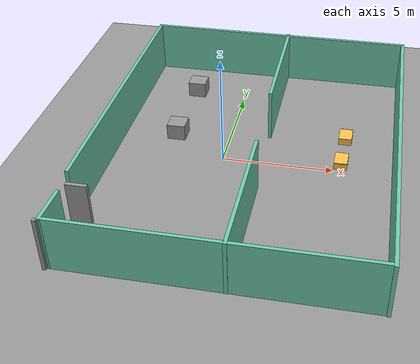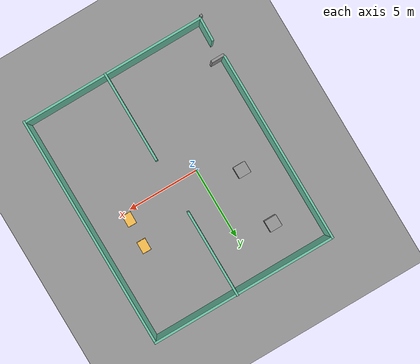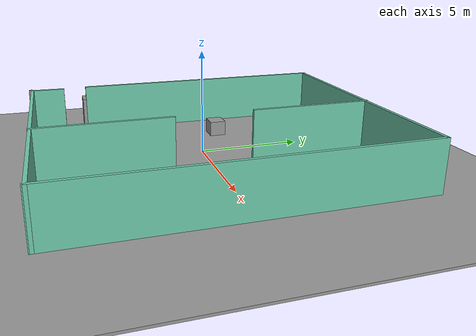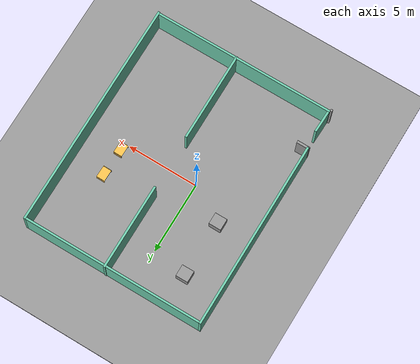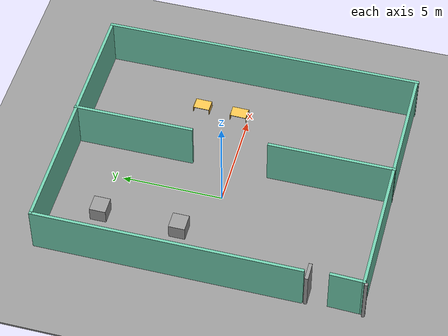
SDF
<sdf version="1.6">
 <world name="default">
  <model name="ground_plane">
   <static>1</static>
   <link name="link">
    <collision name="collision">
     <geometry><plane><normal>0 0 1</normal><size>100 100</size></plane></geometry>
     <surface><friction><ode><mu>100</mu><mu2>50</mu2></ode></friction></surface>
    </collision>
    <visual name="visual">
     <cast_shadows>0</cast_shadows>
     <geometry><plane><normal>0 0 1</normal><size>100 100</size></plane></geometry>
     <material>
      <script><uri>file://media/materials/scripts/gazebo.material</uri><name>Gazebo/Grey</name></script>
     </material>
    </visual>
   </link>
  </model>
  <model name="mybuild_0">
   <link name="Door_0">
    <pose>-5.95118 -5.22843 0 0 -0 0</pose>
    <visual name="Door_0_Visual">
     <pose>0 0 1 0 -0 0</pose>
     <geometry><box><size>0.9 0.17 2</size></box></geometry>
     <material>
      <script><uri>file://media/materials/scripts/gazebo.material</uri><name>Gazebo/Grey</name></script>
      <ambient>0.3 0.3 0.3 1</ambient>
      <diffuse>0.7 0.7 0.7 1</diffuse>
      <specular>0.01 0.01 0.01 1</specular>
      <emissive>0 0 0 1</emissive>
     </material>
    </visual>
    <collision name="Door_0_Collision">
     <pose>0 0 1 0 -0 0</pose>
     <geometry><box><size>0.9 0.17 2</size></box></geometry>
     <surface>
      <friction>
       <ode><mu>1</mu><mu2>1</mu2><fdir1>0 0 0</fdir1><slip1>0</slip1><slip2>0</slip2></ode>
       <torsional>
        <coefficient>1</coefficient>
        <patch_radius>0</patch_radius>
        <surface_radius>0</surface_radius>
        <use_patch_radius>1</use_patch_radius>
        <ode><slip>0</slip></ode>
       </torsional>
      </friction>
      <bounce><restitution_coefficient>0</restitution_coefficient><threshold>1e+06</threshold></bounce>
      <contact>
       <collide_without_contact>0</collide_without_contact>
       <collide_without_contact_bitmask>1</collide_without_contact_bitmask>
       <collide_bitmask>1</collide_bitmask>
       <ode>
        <soft_cfm>0</soft_cfm>
        <soft_erp>0.2</soft_erp>
        <kp>1e+13</kp>
        <kd>1</kd>
        <max_vel>0.01</max_vel>
        <min_depth>0</min_depth>
       </ode>
       <bullet>
        <split_impulse>1</split_impulse>
        <split_impulse_penetration_threshold>-0.01</split_impulse_penetration_threshold>
        <soft_cfm>0</soft_cfm>
        <soft_erp>0.2</soft_erp>
        <kp>1e+13</kp>
        <kd>1</kd>
       </bullet>
      </contact>
     </surface>
    </collision>
   </link>
   <link name="Wall_10">
    <pose>-6.36085 -7.96009 0 0 -0 0</pose>
    <visual name="Wall_10_Visual">
     <pose>0 0 1.25 0 -0 0</pose>
     <geometry><box><size>0.15 0.15 2.5</size></box></geometry>
     <material>
      <script><uri>file://media/materials/scripts/gazebo.material</uri><name>Gazebo/Grey</name></script>
      <ambient>1 1 1 1</ambient>
      <diffuse>0.7 0.7 0.7 1</diffuse>
      <specular>0.01 0.01 0.01 1</specular>
      <emissive>0 0 0 1</emissive>
     </material>
    </visual>
    <collision name="Wall_10_Collision">
     <pose>0 0 1.25 0 -0 0</pose>
     <geometry><box><size>0.15 0.15 2.5</size></box></geometry>
     <surface>
      <friction>
       <ode><mu>1</mu><mu2>1</mu2><fdir1>0 0 0</fdir1><slip1>0</slip1><slip2>0</slip2></ode>
       <torsional>
        <coefficient>1</coefficient>
        <patch_radius>0</patch_radius>
        <surface_radius>0</surface_radius>
        <use_patch_radius>1</use_patch_radius>
        <ode><slip>0</slip></ode>
       </torsional>
      </friction>
      <bounce><restitution_coefficient>0</restitution_coefficient><threshold>1e+06</threshold></bounce>
      <contact>
       <collide_without_contact>0</collide_without_contact>
       <collide_without_contact_bitmask>1</collide_without_contact_bitmask>
       <collide_bitmask>1</collide_bitmask>
       <ode>
        <soft_cfm>0</soft_cfm>
        <soft_erp>0.2</soft_erp>
        <kp>1e+13</kp>
        <kd>1</kd>
        <max_vel>0.01</max_vel>
        <min_depth>0</min_depth>
       </ode>
       <bullet>
        <split_impulse>1</split_impulse>
        <split_impulse_penetration_threshold>-0.01</split_impulse_penetration_threshold>
        <soft_cfm>0</soft_cfm>
        <soft_erp>0.2</soft_erp>
        <kp>1e+13</kp>
        <kd>1</kd>
       </bullet>
      </contact>
     </surface>
    </collision>
   </link>
   <link name="Wall_36">
    <pose>0.562167 -4.8242 0 0 0 -1.5708</pose>
    <visual name="Wall_36_Visual">
     <pose>0 0 1.25 0 -0 0</pose>
     <geometry><box><size>6.25 0.15 2.5</size></box></geometry>
     <material>
      <script><uri>file://media/materials/scripts/gazebo.material</uri><name>Gazebo/Grey</name></script>
      <ambient>0.435294 0.796078 0.67451 1</ambient>
      <diffuse>0.7 0.7 0.7 1</diffuse>
      <specular>0.01 0.01 0.01 1</specular>
      <emissive>0 0 0 1</emissive>
     </material>
    </visual>
    <collision name="Wall_36_Collision">
     <pose>0 0 1.25 0 -0 0</pose>
     <geometry><box><size>6.25 0.15 2.5</size></box></geometry>
     <surface>
      <friction>
       <ode><mu>1</mu><mu2>1</mu2><fdir1>0 0 0</fdir1><slip1>0</slip1><slip2>0</slip2></ode>
       <torsional>
        <coefficient>1</coefficient>
        <patch_radius>0</patch_radius>
        <surface_radius>0</surface_radius>
        <use_patch_radius>1</use_patch_radius>
        <ode><slip>0</slip></ode>
       </torsional>
      </friction>
      <bounce><restitution_coefficient>0</restitution_coefficient><threshold>1e+06</threshold></bounce>
      <contact>
       <collide_without_contact>0</collide_without_contact>
       <collide_without_contact_bitmask>1</collide_without_contact_bitmask>
       <collide_bitmask>1</collide_bitmask>
       <ode>
        <soft_cfm>0</soft_cfm>
        <soft_erp>0.2</soft_erp>
        <kp>1e+13</kp>
        <kd>1</kd>
        <max_vel>0.01</max_vel>
        <min_depth>0</min_depth>
       </ode>
       <bullet>
        <split_impulse>1</split_impulse>
        <split_impulse_penetration_threshold>-0.01</split_impulse_penetration_threshold>
        <soft_cfm>0</soft_cfm>
        <soft_erp>0.2</soft_erp>
        <kp>1e+13</kp>
        <kd>1</kd>
       </bullet>
      </contact>
     </surface>
    </collision>
   </link>
   <link name="Wall_40">
    <pose>0.521712 5.03509 0 0 0 -1.5708</pose>
    <visual name="Wall_40_Visual">
     <pose>0 0 1.25 0 -0 0</pose>
     <geometry><box><size>6 0.15 2.5</size></box></geometry>
     <material>
      <script><uri>file://media/materials/scripts/gazebo.material</uri><name>Gazebo/Grey</name></script>
      <ambient>0.435294 0.796078 0.67451 1</ambient>
      <diffuse>0.7 0.7 0.7 1</diffuse>
      <specular>0.01 0.01 0.01 1</specular>
      <emissive>0 0 0 1</emissive>
     </material>
    </visual>
    <collision name="Wall_40_Collision">
     <pose>0 0 1.25 0 -0 0</pose>
     <geometry><box><size>6 0.15 2.5</size></box></geometry>
     <surface>
      <friction>
       <ode><mu>1</mu><mu2>1</mu2><fdir1>0 0 0</fdir1><slip1>0</slip1><slip2>0</slip2></ode>
       <torsional>
        <coefficient>1</coefficient>
        <patch_radius>0</patch_radius>
        <surface_radius>0</surface_radius>
        <use_patch_radius>1</use_patch_radius>
        <ode><slip>0</slip></ode>
       </torsional>
      </friction>
      <bounce><restitution_coefficient>0</restitution_coefficient><threshold>1e+06</threshold></bounce>
      <contact>
       <collide_without_contact>0</collide_without_contact>
       <collide_without_contact_bitmask>1</collide_without_contact_bitmask>
       <collide_bitmask>1</collide_bitmask>
       <ode>
        <soft_cfm>0</soft_cfm>
        <soft_erp>0.2</soft_erp>
        <kp>1e+13</kp>
        <kd>1</kd>
        <max_vel>0.01</max_vel>
        <min_depth>0</min_depth>
       </ode>
       <bullet>
        <split_impulse>1</split_impulse>
        <split_impulse_penetration_threshold>-0.01</split_impulse_penetration_threshold>
        <soft_cfm>0</soft_cfm>
        <soft_erp>0.2</soft_erp>
        <kp>1e+13</kp>
        <kd>1</kd>
       </bullet>
      </contact>
     </surface>
    </collision>
   </link>
   <link name="Wall_42">
    <pose>-6.21653 -7.08819 0 0 0 -1.60026</pose>
    <visual name="Wall_42_Visual">
     <pose>0 0 1.25 0 -0 0</pose>
     <geometry><box><size>1.68559 0.15 2.5</size></box></geometry>
     <material>
      <script><uri>file://media/materials/scripts/gazebo.material</uri><name>Gazebo/Grey</name></script>
      <ambient>0.435294 0.796078 0.67451 1</ambient>
      <diffuse>0.7 0.7 0.7 1</diffuse>
      <specular>0.01 0.01 0.01 1</specular>
      <emissive>0 0 0 1</emissive>
     </material>
    </visual>
    <collision name="Wall_42_Collision">
     <pose>0 0 1.25 0 -0 0</pose>
     <geometry><box><size>1.68559 0.15 2.5</size></box></geometry>
     <surface>
      <friction>
       <ode><mu>1</mu><mu2>1</mu2><fdir1>0 0 0</fdir1><slip1>0</slip1><slip2>0</slip2></ode>
       <torsional>
        <coefficient>1</coefficient>
        <patch_radius>0</patch_radius>
        <surface_radius>0</surface_radius>
        <use_patch_radius>1</use_patch_radius>
        <ode><slip>0</slip></ode>
       </torsional>
      </friction>
      <bounce><restitution_coefficient>0</restitution_coefficient><threshold>1e+06</threshold></bounce>
      <contact>
       <collide_without_contact>0</collide_without_contact>
       <collide_without_contact_bitmask>1</collide_without_contact_bitmask>
       <collide_bitmask>1</collide_bitmask>
       <ode>
        <soft_cfm>0</soft_cfm>
        <soft_erp>0.2</soft_erp>
        <kp>1e+13</kp>
        <kd>1</kd>
        <max_vel>0.01</max_vel>
        <min_depth>0</min_depth>
       </ode>
       <bullet>
        <split_impulse>1</split_impulse>
        <split_impulse_penetration_threshold>-0.01</split_impulse_penetration_threshold>
        <soft_cfm>0</soft_cfm>
        <soft_erp>0.2</soft_erp>
        <kp>1e+13</kp>
        <kd>1</kd>
       </bullet>
      </contact>
     </surface>
    </collision>
   </link>
   <link name="Wall_5">
    <pose>-6.32202 1.44463 0 0 -0 1.5708</pose>
    <visual name="Wall_5_Visual">
     <pose>0 0 1.25 0 -0 0</pose>
     <geometry><box><size>13.1102 0.15 2.5</size></box></geometry>
     <material>
      <script><uri>file://media/materials/scripts/gazebo.material</uri><name>Gazebo/Grey</name></script>
      <ambient>0.435294 0.796078 0.67451 1</ambient>
      <diffuse>0.7 0.7 0.7 1</diffuse>
      <specular>0.01 0.01 0.01 1</specular>
      <emissive>0 0 0 1</emissive>
     </material>
    </visual>
    <collision name="Wall_5_Collision">
     <pose>0 0 1.25 0 -0 0</pose>
     <geometry><box><size>13.1102 0.15 2.5</size></box></geometry>
     <surface>
      <friction>
       <ode><mu>1</mu><mu2>1</mu2><fdir1>0 0 0</fdir1><slip1>0</slip1><slip2>0</slip2></ode>
       <torsional>
        <coefficient>1</coefficient>
        <patch_radius>0</patch_radius>
        <surface_radius>0</surface_radius>
        <use_patch_radius>1</use_patch_radius>
        <ode><slip>0</slip></ode>
       </torsional>
      </friction>
      <bounce><restitution_coefficient>0</restitution_coefficient><threshold>1e+06</threshold></bounce>
      <contact>
       <collide_without_contact>0</collide_without_contact>
       <collide_without_contact_bitmask>1</collide_without_contact_bitmask>
       <collide_bitmask>1</collide_bitmask>
       <ode>
        <soft_cfm>0</soft_cfm>
        <soft_erp>0.2</soft_erp>
        <kp>1e+13</kp>
        <kd>1</kd>
        <max_vel>0.01</max_vel>
        <min_depth>0</min_depth>
       </ode>
       <bullet>
        <split_impulse>1</split_impulse>
        <split_impulse_penetration_threshold>-0.01</split_impulse_penetration_threshold>
        <soft_cfm>0</soft_cfm>
        <soft_erp>0.2</soft_erp>
        <kp>1e+13</kp>
        <kd>1</kd>
       </bullet>
      </contact>
     </surface>
    </collision>
   </link>
   <link name="Wall_6">
    <pose>0.019411 7.92462 0 0 -0 0</pose>
    <visual name="Wall_6_Visual">
     <pose>0 0 1.25 0 -0 0</pose>
     <geometry><box><size>12.8329 0.15 2.5</size></box></geometry>
     <material>
      <script><uri>file://media/materials/scripts/gazebo.material</uri><name>Gazebo/Grey</name></script>
      <ambient>0.435294 0.796078 0.67451 1</ambient>
      <diffuse>0.7 0.7 0.7 1</diffuse>
      <specular>0.01 0.01 0.01 1</specular>
      <emissive>0 0 0 1</emissive>
     </material>
    </visual>
    <collision name="Wall_6_Collision">
     <pose>0 0 1.25 0 -0 0</pose>
     <geometry><box><size>12.8329 0.15 2.5</size></box></geometry>
     <surface>
      <friction>
       <ode><mu>1</mu><mu2>1</mu2><fdir1>0 0 0</fdir1><slip1>0</slip1><slip2>0</slip2></ode>
       <torsional>
        <coefficient>1</coefficient>
        <patch_radius>0</patch_radius>
        <surface_radius>0</surface_radius>
        <use_patch_radius>1</use_patch_radius>
        <ode><slip>0</slip></ode>
       </torsional>
      </friction>
      <bounce><restitution_coefficient>0</restitution_coefficient><threshold>1e+06</threshold></bounce>
      <contact>
       <collide_without_contact>0</collide_without_contact>
       <collide_without_contact_bitmask>1</collide_without_contact_bitmask>
       <collide_bitmask>1</collide_bitmask>
       <ode>
        <soft_cfm>0</soft_cfm>
        <soft_erp>0.2</soft_erp>
        <kp>1e+13</kp>
        <kd>1</kd>
        <max_vel>0.01</max_vel>
        <min_depth>0</min_depth>
       </ode>
       <bullet>
        <split_impulse>1</split_impulse>
        <split_impulse_penetration_threshold>-0.01</split_impulse_penetration_threshold>
        <soft_cfm>0</soft_cfm>
        <soft_erp>0.2</soft_erp>
        <kp>1e+13</kp>
        <kd>1</kd>
       </bullet>
      </contact>
     </surface>
    </collision>
   </link>
   <link name="Wall_7">
    <pose>6.36085 0.014255 0 0 0 -1.5708</pose>
    <visual name="Wall_7_Visual">
     <pose>0 0 1.25 0 -0 0</pose>
     <geometry><box><size>15.9709 0.15 2.5</size></box></geometry>
     <material>
      <script><uri>file://media/materials/scripts/gazebo.material</uri><name>Gazebo/Grey</name></script>
      <ambient>0.435294 0.796078 0.67451 1</ambient>
      <diffuse>0.7 0.7 0.7 1</diffuse>
      <specular>0.01 0.01 0.01 1</specular>
      <emissive>0 0 0 1</emissive>
     </material>
    </visual>
    <collision name="Wall_7_Collision">
     <pose>0 0 1.25 0 -0 0</pose>
     <geometry><box><size>15.9709 0.15 2.5</size></box></geometry>
     <surface>
      <friction>
       <ode><mu>1</mu><mu2>1</mu2><fdir1>0 0 0</fdir1><slip1>0</slip1><slip2>0</slip2></ode>
       <torsional>
        <coefficient>1</coefficient>
        <patch_radius>0</patch_radius>
        <surface_radius>0</surface_radius>
        <use_patch_radius>1</use_patch_radius>
        <ode><slip>0</slip></ode>
       </torsional>
      </friction>
      <bounce><restitution_coefficient>0</restitution_coefficient><threshold>1e+06</threshold></bounce>
      <contact>
       <collide_without_contact>0</collide_without_contact>
       <collide_without_contact_bitmask>1</collide_without_contact_bitmask>
       <collide_bitmask>1</collide_bitmask>
       <ode>
        <soft_cfm>0</soft_cfm>
        <soft_erp>0.2</soft_erp>
        <kp>1e+13</kp>
        <kd>1</kd>
        <max_vel>0.01</max_vel>
        <min_depth>0</min_depth>
       </ode>
       <bullet>
        <split_impulse>1</split_impulse>
        <split_impulse_penetration_threshold>-0.01</split_impulse_penetration_threshold>
        <soft_cfm>0</soft_cfm>
        <soft_erp>0.2</soft_erp>
        <kp>1e+13</kp>
        <kd>1</kd>
       </bullet>
      </contact>
     </surface>
    </collision>
   </link>
   <link name="Wall_8">
    <pose>0.060846 -7.85565 0 0 -0 3.14159</pose>
    <visual name="Wall_8_Visual">
     <pose>0 0 1.25 0 -0 0</pose>
     <geometry><box><size>12.75 0.15 2.5</size></box></geometry>
     <material>
      <script><uri>file://media/materials/scripts/gazebo.material</uri><name>Gazebo/Grey</name></script>
      <ambient>0.435294 0.796078 0.67451 1</ambient>
      <diffuse>0.7 0.7 0.7 1</diffuse>
      <specular>0.01 0.01 0.01 1</specular>
      <emissive>0 0 0 1</emissive>
     </material>
    </visual>
    <collision name="Wall_8_Collision">
     <pose>0 0 1.25 0 -0 0</pose>
     <geometry><box><size>12.75 0.15 2.5</size></box></geometry>
     <surface>
      <friction>
       <ode><mu>1</mu><mu2>1</mu2><fdir1>0 0 0</fdir1><slip1>0</slip1><slip2>0</slip2></ode>
       <torsional>
        <coefficient>1</coefficient>
        <patch_radius>0</patch_radius>
        <surface_radius>0</surface_radius>
        <use_patch_radius>1</use_patch_radius>
        <ode><slip>0</slip></ode>
       </torsional>
      </friction>
      <bounce><restitution_coefficient>0</restitution_coefficient><threshold>1e+06</threshold></bounce>
      <contact>
       <collide_without_contact>0</collide_without_contact>
       <collide_without_contact_bitmask>1</collide_without_contact_bitmask>
       <collide_bitmask>1</collide_bitmask>
       <ode>
        <soft_cfm>0</soft_cfm>
        <soft_erp>0.2</soft_erp>
        <kp>1e+13</kp>
        <kd>1</kd>
        <max_vel>0.01</max_vel>
        <min_depth>0</min_depth>
       </ode>
       <bullet>
        <split_impulse>1</split_impulse>
        <split_impulse_penetration_threshold>-0.01</split_impulse_penetration_threshold>
        <soft_cfm>0</soft_cfm>
        <soft_erp>0.2</soft_erp>
        <kp>1e+13</kp>
        <kd>1</kd>
       </bullet>
      </contact>
     </surface>
    </collision>
   </link>
   <model name="ground_plane">
    <static>1</static>
    <link name="link">
     <collision name="collision">
      <geometry><plane><normal>0 0 1</normal><size>100 100</size></plane></geometry>
      <surface><friction><ode><mu>100</mu><mu2>50</mu2></ode></friction></surface>
     </collision>
     <visual name="visual">
      <cast_shadows>0</cast_shadows>
      <geometry><plane><normal>0 0 1</normal><size>100 100</size></plane></geometry>
      <material>
       <script><uri>file://media/materials/scripts/gazebo.material</uri><name>Gazebo/Grey</name></script>
      </material>
     </visual>
    </link>
    <pose>-0.30157 -0.91558 0 0 -0 0</pose>
   </model>
   <static>1</static>
   <pose>1.30157 -0.08442 0 0 -0 0</pose>
  </model>
  <model name="Fridge_Cabinet_33x15">
   <link name="Wall_17">
    <pose>0 0 0.01 0 -0 0</pose>
    <inertial>
     <mass>4.8627</mass>
     <inertia><ixx>0.146</ixx><iyy>0.4318</iyy><izz>0.2861</izz><ixy>0</ixy><ixz>0</ixz><iyz>0</iyz></inertia>
    </inertial>
    <collision name="Wall_17_Collision"><geometry><box><size>0.84 0.6 0.02</size></box></geometry></collision>
    <visual name="Wall_17_Visual">
     <geometry><box><size>0.84 0.6 0.02</size></box></geometry>
     <material>
      <script><uri>file://media/materials/scripts/gazebo.material</uri><name>Gazebo/Grey</name></script>
      <ambient>1 0.764706 0.305882 1</ambient>
     </material>
    </visual>
   </link>
   <joint name="17_21" type="fixed">
    <pose>0.42 0 0 0 -0 0</pose>
    <parent>Wall_21</parent>
    <child>Wall_17</child>
    <axis>
     <xyz>1 0 0</xyz>
     <use_parent_model_frame>0</use_parent_model_frame>
     <limit><lower>-1e+16</lower><upper>1e+16</upper></limit>
    </axis>
   </joint>
   <joint name="17_19" type="fixed">
    <pose>-0.42 0 0 0 -0 0</pose>
    <parent>Wall_19</parent>
    <child>Wall_17</child>
    <axis>
     <xyz>1 0 0</xyz>
     <use_parent_model_frame>0</use_parent_model_frame>
     <limit><lower>-1e+16</lower><upper>1e+16</upper></limit>
    </axis>
   </joint>
   <joint name="17_25" type="fixed">
    <pose>0 -0.3 0 0 -0 0</pose>
    <parent>Wall_25</parent>
    <child>Wall_17</child>
    <axis>
     <xyz>0 1 0</xyz>
     <use_parent_model_frame>0</use_parent_model_frame>
     <limit><lower>-1e+16</lower><upper>1e+16</upper></limit>
    </axis>
   </joint>
   <link name="Wall_19">
    <pose>-0.41 0 0.192 0 -0 0</pose>
    <inertial>
     <mass>2.223</mass>
     <inertia><ixx>0.0668</ixx><iyy>0.094</iyy><izz>0.0274</izz><ixy>0</ixy><ixz>0</ixz><iyz>0</iyz></inertia>
    </inertial>
    <collision name="Wall_19_Collision"><geometry><box><size>0.02 0.6 0.384</size></box></geometry></collision>
    <visual name="Wall_19_Visual">
     <geometry><box><size>0.02 0.6 0.384</size></box></geometry>
     <material>
      <script><uri>file://media/materials/scripts/gazebo.material</uri><name>Gazebo/Grey</name></script>
      <ambient>1 0.764706 0.305882 1</ambient>
     </material>
    </visual>
   </link>
   <link name="Wall_21">
    <pose>0.41 0 0.192 0 -0 0</pose>
    <inertial>
     <mass>2.223</mass>
     <inertia><ixx>0.0668</ixx><iyy>0.094</iyy><izz>0.0274</izz><ixy>0</ixy><ixz>0</ixz><iyz>0</iyz></inertia>
    </inertial>
    <collision name="Wall_21_Collision"><geometry><box><size>0.02 0.6 0.384</size></box></geometry></collision>
    <visual name="Wall_21_Visual">
     <geometry><box><size>0.02 0.6 0.384</size></box></geometry>
     <material>
      <script><uri>file://media/materials/scripts/gazebo.material</uri><name>Gazebo/Grey</name></script>
      <ambient>1 0.764706 0.305882 1</ambient>
     </material>
    </visual>
   </link>
   <link name="Wall_23">
    <pose>0 0 0.374 0 -0 0</pose>
    <inertial>
     <mass>4.8627</mass>
     <inertia><ixx>0.146</ixx><iyy>0.4318</iyy><izz>0.2861</izz><ixy>0</ixy><ixz>0</ixz><iyz>0</iyz></inertia>
    </inertial>
    <collision name="Wall_23_Collision"><geometry><box><size>0.84 0.6 0.02</size></box></geometry></collision>
    <visual name="Wall_23_Visual">
     <geometry><box><size>0.84 0.6 0.02</size></box></geometry>
     <material>
      <script><uri>file://media/materials/scripts/gazebo.material</uri><name>Gazebo/Grey</name></script>
      <ambient>1 0.764706 0.305882 1</ambient>
     </material>
    </visual>
   </link>
   <joint name="23_21" type="fixed">
    <pose>0.42 0 0 0 -0 0</pose>
    <parent>Wall_21</parent>
    <child>Wall_23</child>
    <axis>
     <xyz>0 0 1</xyz>
     <use_parent_model_frame>0</use_parent_model_frame>
     <limit><lower>-1e+16</lower><upper>1e+16</upper></limit>
    </axis>
   </joint>
   <joint name="23_19" type="fixed">
    <pose>-0.42 0 0 0 -0 0</pose>
    <parent>Wall_19</parent>
    <child>Wall_23</child>
    <axis>
     <xyz>0 0 1</xyz>
     <use_parent_model_frame>0</use_parent_model_frame>
     <limit><lower>-1e+16</lower><upper>1e+16</upper></limit>
    </axis>
   </joint>
   <joint name="23_25" type="fixed">
    <pose>0 -0.3 0 0 -0 0</pose>
    <parent>Wall_25</parent>
    <child>Wall_23</child>
    <axis>
     <xyz>0 0 1</xyz>
     <use_parent_model_frame>0</use_parent_model_frame>
     <limit><lower>-1e+16</lower><upper>1e+16</upper></limit>
    </axis>
   </joint>
   <link name="Wall_25">
    <pose>0 -0.29 0.19 0 -0 0</pose>
    <inertial>
     <mass>3.0651</mass>
     <inertia><ixx>0.037</ixx><iyy>0.1786</iyy><izz>0.2154</izz><ixy>0</ixy><ixz>0</ixz><iyz>0</iyz></inertia>
    </inertial>
    <collision name="Wall_25_Collision"><geometry><box><size>0.836 0.02 0.38</size></box></geometry></collision>
    <visual name="Wall_25_Visual">
     <geometry><box><size>0.836 0.02 0.38</size></box></geometry>
     <material>
      <script><uri>file://media/materials/scripts/gazebo.material</uri><name>Gazebo/Grey</name></script>
      <ambient>1 0.764706 0.305882 1</ambient>
     </material>
    </visual>
   </link>
   <joint name="25_21" type="fixed">
    <pose>0.42 0 0 0 -0 0</pose>
    <parent>Wall_21</parent>
    <child>Wall_25</child>
    <axis>
     <xyz>0 1 0</xyz>
     <use_parent_model_frame>0</use_parent_model_frame>
     <limit><lower>-1e+16</lower><upper>1e+16</upper></limit>
    </axis>
   </joint>
   <joint name="25_19" type="fixed">
    <pose>-0.42 0 0 0 -0 0</pose>
    <parent>Wall_19</parent>
    <child>Wall_25</child>
    <axis>
     <xyz>0 1 0</xyz>
     <use_parent_model_frame>0</use_parent_model_frame>
     <limit><lower>-1e+16</lower><upper>1e+16</upper></limit>
    </axis>
   </joint>
   <static>1</static>
   <pose>5.36839 2.44359 0 0 -0 1.5521</pose>
  </model>
  <model name="Fridge_Cabinet_33x15_clone">
   <link name="Wall_17">
    <pose>0 0 0.01 0 -0 0</pose>
    <inertial>
     <mass>4.8627</mass>
     <inertia><ixx>0.146</ixx><iyy>0.4318</iyy><izz>0.2861</izz><ixy>0</ixy><ixz>0</ixz><iyz>0</iyz></inertia>
    </inertial>
    <collision name="Wall_17_Collision"><geometry><box><size>0.84 0.6 0.02</size></box></geometry></collision>
    <visual name="Wall_17_Visual">
     <geometry><box><size>0.84 0.6 0.02</size></box></geometry>
     <material>
      <script><uri>file://media/materials/scripts/gazebo.material</uri><name>Gazebo/Grey</name></script>
      <ambient>1 0.764706 0.305882 1</ambient>
     </material>
    </visual>
   </link>
   <joint name="17_21" type="fixed">
    <pose>0.42 0 0 0 -0 0</pose>
    <parent>Wall_21</parent>
    <child>Wall_17</child>
    <axis>
     <xyz>1 0 0</xyz>
     <use_parent_model_frame>0</use_parent_model_frame>
     <limit><lower>-1e+16</lower><upper>1e+16</upper></limit>
    </axis>
   </joint>
   <joint name="17_19" type="fixed">
    <pose>-0.42 0 0 0 -0 0</pose>
    <parent>Wall_19</parent>
    <child>Wall_17</child>
    <axis>
     <xyz>1 0 0</xyz>
     <use_parent_model_frame>0</use_parent_model_frame>
     <limit><lower>-1e+16</lower><upper>1e+16</upper></limit>
    </axis>
   </joint>
   <joint name="17_25" type="fixed">
    <pose>0 -0.3 0 0 -0 0</pose>
    <parent>Wall_25</parent>
    <child>Wall_17</child>
    <axis>
     <xyz>0 1 0</xyz>
     <use_parent_model_frame>0</use_parent_model_frame>
     <limit><lower>-1e+16</lower><upper>1e+16</upper></limit>
    </axis>
   </joint>
   <link name="Wall_19">
    <pose>-0.41 0 0.192 0 -0 0</pose>
    <inertial>
     <mass>2.223</mass>
     <inertia><ixx>0.0668</ixx><iyy>0.094</iyy><izz>0.0274</izz><ixy>0</ixy><ixz>0</ixz><iyz>0</iyz></inertia>
    </inertial>
    <collision name="Wall_19_Collision"><geometry><box><size>0.02 0.6 0.384</size></box></geometry></collision>
    <visual name="Wall_19_Visual">
     <geometry><box><size>0.02 0.6 0.384</size></box></geometry>
     <material>
      <script><uri>file://media/materials/scripts/gazebo.material</uri><name>Gazebo/Grey</name></script>
      <ambient>1 0.764706 0.305882 1</ambient>
     </material>
    </visual>
   </link>
   <link name="Wall_21">
    <pose>0.41 0 0.192 0 -0 0</pose>
    <inertial>
     <mass>2.223</mass>
     <inertia><ixx>0.0668</ixx><iyy>0.094</iyy><izz>0.0274</izz><ixy>0</ixy><ixz>0</ixz><iyz>0</iyz></inertia>
    </inertial>
    <collision name="Wall_21_Collision"><geometry><box><size>0.02 0.6 0.384</size></box></geometry></collision>
    <visual name="Wall_21_Visual">
     <geometry><box><size>0.02 0.6 0.384</size></box></geometry>
     <material>
      <script><uri>file://media/materials/scripts/gazebo.material</uri><name>Gazebo/Grey</name></script>
      <ambient>1 0.764706 0.305882 1</ambient>
     </material>
    </visual>
   </link>
   <link name="Wall_23">
    <pose>0 0 0.374 0 -0 0</pose>
    <inertial>
     <mass>4.8627</mass>
     <inertia><ixx>0.146</ixx><iyy>0.4318</iyy><izz>0.2861</izz><ixy>0</ixy><ixz>0</ixz><iyz>0</iyz></inertia>
    </inertial>
    <collision name="Wall_23_Collision"><geometry><box><size>0.84 0.6 0.02</size></box></geometry></collision>
    <visual name="Wall_23_Visual">
     <geometry><box><size>0.84 0.6 0.02</size></box></geometry>
     <material>
      <script><uri>file://media/materials/scripts/gazebo.material</uri><name>Gazebo/Grey</name></script>
      <ambient>1 0.764706 0.305882 1</ambient>
     </material>
    </visual>
   </link>
   <joint name="23_21" type="fixed">
    <pose>0.42 0 0 0 -0 0</pose>
    <parent>Wall_21</parent>
    <child>Wall_23</child>
    <axis>
     <xyz>0 0 1</xyz>
     <use_parent_model_frame>0</use_parent_model_frame>
     <limit><lower>-1e+16</lower><upper>1e+16</upper></limit>
    </axis>
   </joint>
   <joint name="23_19" type="fixed">
    <pose>-0.42 0 0 0 -0 0</pose>
    <parent>Wall_19</parent>
    <child>Wall_23</child>
    <axis>
     <xyz>0 0 1</xyz>
     <use_parent_model_frame>0</use_parent_model_frame>
     <limit><lower>-1e+16</lower><upper>1e+16</upper></limit>
    </axis>
   </joint>
   <joint name="23_25" type="fixed">
    <pose>0 -0.3 0 0 -0 0</pose>
    <parent>Wall_25</parent>
    <child>Wall_23</child>
    <axis>
     <xyz>0 0 1</xyz>
     <use_parent_model_frame>0</use_parent_model_frame>
     <limit><lower>-1e+16</lower><upper>1e+16</upper></limit>
    </axis>
   </joint>
   <link name="Wall_25">
    <pose>0 -0.29 0.19 0 -0 0</pose>
    <inertial>
     <mass>3.0651</mass>
     <inertia><ixx>0.037</ixx><iyy>0.1786</iyy><izz>0.2154</izz><ixy>0</ixy><ixz>0</ixz><iyz>0</iyz></inertia>
    </inertial>
    <collision name="Wall_25_Collision"><geometry><box><size>0.836 0.02 0.38</size></box></geometry></collision>
    <visual name="Wall_25_Visual">
     <geometry><box><size>0.836 0.02 0.38</size></box></geometry>
     <material>
      <script><uri>file://media/materials/scripts/gazebo.material</uri><name>Gazebo/Grey</name></script>
      <ambient>1 0.764706 0.305882 1</ambient>
     </material>
    </visual>
   </link>
   <joint name="25_21" type="fixed">
    <pose>0.42 0 0 0 -0 0</pose>
    <parent>Wall_21</parent>
    <child>Wall_25</child>
    <axis>
     <xyz>0 1 0</xyz>
     <use_parent_model_frame>0</use_parent_model_frame>
     <limit><lower>-1e+16</lower><upper>1e+16</upper></limit>
    </axis>
   </joint>
   <joint name="25_19" type="fixed">
    <pose>-0.42 0 0 0 -0 0</pose>
    <parent>Wall_19</parent>
    <child>Wall_25</child>
    <axis>
     <xyz>0 1 0</xyz>
     <use_parent_model_frame>0</use_parent_model_frame>
     <limit><lower>-1e+16</lower><upper>1e+16</upper></limit>
    </axis>
   </joint>
   <static>1</static>
   <pose>5.30764 0.508697 0 0 -0 1.5521</pose>
  </model>
  <model name="unit_box_0">
   <pose>-2.44144 5.39414 0.400121 0.254084 1.57079 0.257648</pose>
   <link name="link">
    <inertial>
     <mass>1</mass>
     <inertia>
      <ixx>0.166667</ixx>
      <ixy>0</ixy>
      <ixz>0</ixz>
      <iyy>0.166667</iyy>
      <iyz>0</iyz>
      <izz>0.166667</izz>
     </inertia>
    </inertial>
    <collision name="collision">
     <geometry><box><size>0.800248 0.809115 0.856223</size></box></geometry>
    </collision>
    <visual name="visual">
     <geometry><box><size>0.800248 0.809115 0.856223</size></box></geometry>
     <material>
      <script><name>Gazebo/Grey</name><uri>file://media/materials/scripts/gazebo.material</uri></script>
     </material>
    </visual>
   </link>
  </model>
  <model name="unit_box_0_clone">
   <pose>-2.47947 1.45682 0.400121 0.211329 1.57079 -2.93026</pose>
   <link name="link">
    <inertial>
     <mass>1</mass>
     <inertia>
      <ixx>0.166667</ixx>
      <ixy>0</ixy>
      <ixz>0</ixz>
      <iyy>0.166667</iyy>
      <iyz>0</iyz>
      <izz>0.166667</izz>
     </inertia>
    </inertial>
    <collision name="collision">
     <geometry><box><size>0.800249 0.809115 0.856223</size></box></geometry>
    </collision>
    <visual name="visual">
     <geometry><box><size>0.800249 0.809115 0.856223</size></box></geometry>
     <material>
      <script><name>Gazebo/Grey</name><uri>file://media/materials/scripts/gazebo.material</uri></script>
     </material>
    </visual>
   </link>
  </model>
 </world>
</sdf>
